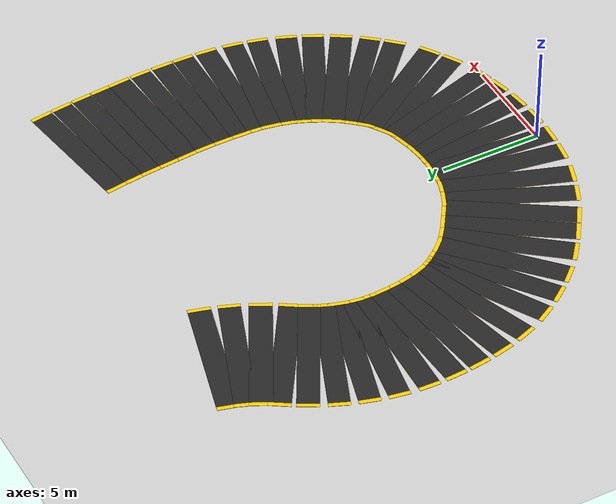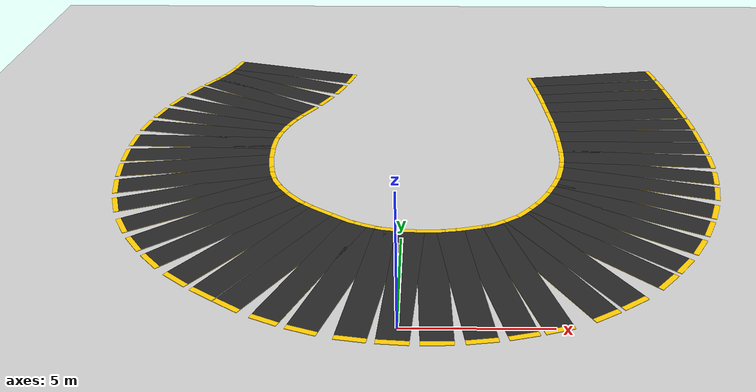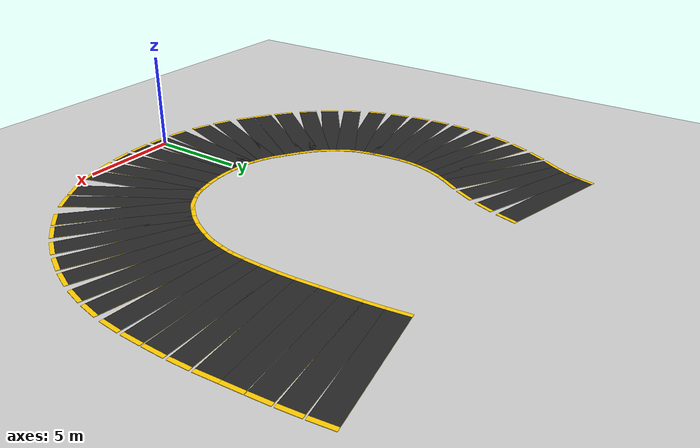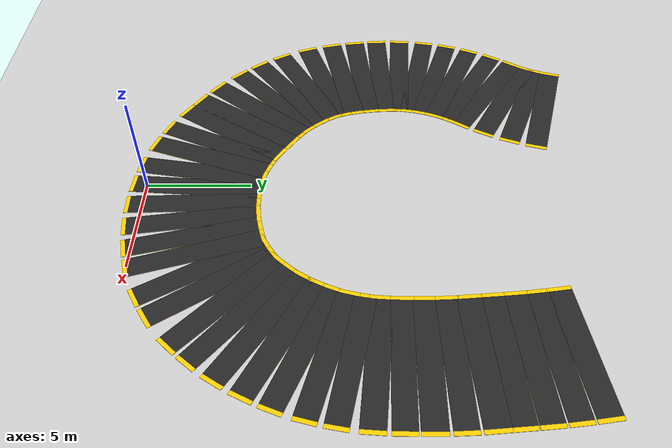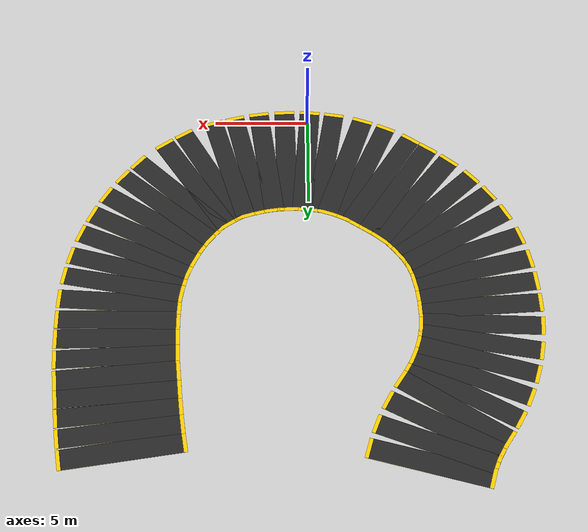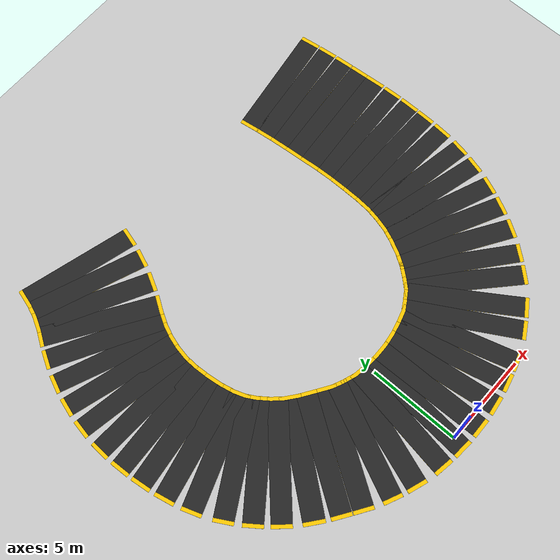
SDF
<sdf version="1.7">
 <world name="custom_road_world">
  <model name="ground_plane">
   <static>true</static>
   <link name="link">
    <collision name="collision">
     <geometry><plane><normal>0 0 1</normal><size>1000 1000</size></plane></geometry>
    </collision>
    <visual name="visual">
     <geometry><plane><normal>0 0 1</normal><size>1000 1000</size></plane></geometry>
     <material>
      <ambient>0.8 0.8 0.8 1</ambient>
      <diffuse>0.8 0.8 0.8 1</diffuse>
      <specular>0.8 0.8 0.8 1</specular>
     </material>
    </visual>
   </link>
  </model>
  <include><uri>https://fuel.ignitionrobotics.org/1.0/openrobotics/models/Sun</uri></include>
  <model name="elliptical_road">
   <static>true</static>
   <link name="seg_25">
    <pose>9.219 19.332 0.01 0 0 -1.419</pose>
    <visual name="yellow_base_25">
     <pose>0 0 0.001 0 0 0</pose>
     <geometry><box><size>1.084 6.4 0.02</size></box></geometry>
     <material>
      <ambient>1.0 0.8 0.0 1.0</ambient>
      <diffuse>1.0 0.8 0.0 1.0</diffuse>
      <specular>0.1 0.1 0.1 1.0</specular>
     </material>
    </visual>
    <visual name="asphalt_top_25">
     <pose>0 0 0.002 0 0 0</pose>
     <geometry><box><size>1.084 6.0 0.02</size></box></geometry>
     <material>
      <ambient>0.15 0.15 0.15 1.0</ambient>
      <diffuse>0.15 0.15 0.15 1.0</diffuse>
      <specular>0.05 0.05 0.05 1.0</specular>
     </material>
    </visual>
    <visual name="center_line_25">
     <pose>0 0 0.003 0 0 0</pose>
     <geometry><box><size>0.542 0.15 0.001</size></box></geometry>
     <material><ambient>0.9 0.9 0.9 1</ambient><diffuse>0.9 0.9 0.9 1</diffuse></material>
    </visual>
   </link>
   <link name="seg_26">
    <pose>9.366 18.288 0.01 0 0 -1.445</pose>
    <visual name="yellow_base_26">
     <pose>0 0 0.001 0 0 0</pose>
     <geometry><box><size>1.025 6.4 0.02</size></box></geometry>
     <material>
      <ambient>1.0 0.8 0.0 1.0</ambient>
      <diffuse>1.0 0.8 0.0 1.0</diffuse>
      <specular>0.1 0.1 0.1 1.0</specular>
     </material>
    </visual>
    <visual name="asphalt_top_26">
     <pose>0 0 0.002 0 0 0</pose>
     <geometry><box><size>1.025 6.0 0.02</size></box></geometry>
     <material>
      <ambient>0.15 0.15 0.15 1.0</ambient>
      <diffuse>0.15 0.15 0.15 1.0</diffuse>
      <specular>0.05 0.05 0.05 1.0</specular>
     </material>
    </visual>
    <visual name="center_line_26">
     <pose>0 0 0.003 0 0 0</pose>
     <geometry><box><size>0.513 0.15 0.001</size></box></geometry>
     <material><ambient>0.9 0.9 0.9 1</ambient><diffuse>0.9 0.9 0.9 1</diffuse></material>
    </visual>
   </link>
   <link name="seg_27">
    <pose>9.481 17.274 0.01 0 0 -1.472</pose>
    <visual name="yellow_base_27">
     <pose>0 0 0.001 0 0 0</pose>
     <geometry><box><size>1.015 6.4 0.02</size></box></geometry>
     <material>
      <ambient>1.0 0.8 0.0 1.0</ambient>
      <diffuse>1.0 0.8 0.0 1.0</diffuse>
      <specular>0.1 0.1 0.1 1.0</specular>
     </material>
    </visual>
    <visual name="asphalt_top_27">
     <pose>0 0 0.002 0 0 0</pose>
     <geometry><box><size>1.015 6.0 0.02</size></box></geometry>
     <material>
      <ambient>0.15 0.15 0.15 1.0</ambient>
      <diffuse>0.15 0.15 0.15 1.0</diffuse>
      <specular>0.05 0.05 0.05 1.0</specular>
     </material>
    </visual>
    <visual name="center_line_27">
     <pose>0 0 0.003 0 0 0</pose>
     <geometry><box><size>0.508 0.15 0.001</size></box></geometry>
     <material><ambient>0.9 0.9 0.9 1</ambient><diffuse>0.9 0.9 0.9 1</diffuse></material>
    </visual>
   </link>
   <link name="seg_28">
    <pose>9.575 16.270 0.01 0 0 -1.483</pose>
    <visual name="yellow_base_28">
     <pose>0 0 0.001 0 0 0</pose>
     <geometry><box><size>1.001 6.4 0.02</size></box></geometry>
     <material>
      <ambient>1.0 0.8 0.0 1.0</ambient>
      <diffuse>1.0 0.8 0.0 1.0</diffuse>
      <specular>0.1 0.1 0.1 1.0</specular>
     </material>
    </visual>
    <visual name="asphalt_top_28">
     <pose>0 0 0.002 0 0 0</pose>
     <geometry><box><size>1.001 6.0 0.02</size></box></geometry>
     <material>
      <ambient>0.15 0.15 0.15 1.0</ambient>
      <diffuse>0.15 0.15 0.15 1.0</diffuse>
      <specular>0.05 0.05 0.05 1.0</specular>
     </material>
    </visual>
    <visual name="center_line_28">
     <pose>0 0 0.003 0 0 0</pose>
     <geometry><box><size>0.501 0.15 0.001</size></box></geometry>
     <material><ambient>0.9 0.9 0.9 1</ambient><diffuse>0.9 0.9 0.9 1</diffuse></material>
    </visual>
   </link>
   <link name="seg_29">
    <pose>9.667 15.225 0.01 0 0 -1.482</pose>
    <visual name="yellow_base_29">
     <pose>0 0 0.001 0 0 0</pose>
     <geometry><box><size>1.098 6.4 0.02</size></box></geometry>
     <material>
      <ambient>1.0 0.8 0.0 1.0</ambient>
      <diffuse>1.0 0.8 0.0 1.0</diffuse>
      <specular>0.1 0.1 0.1 1.0</specular>
     </material>
    </visual>
    <visual name="asphalt_top_29">
     <pose>0 0 0.002 0 0 0</pose>
     <geometry><box><size>1.098 6.0 0.02</size></box></geometry>
     <material>
      <ambient>0.15 0.15 0.15 1.0</ambient>
      <diffuse>0.15 0.15 0.15 1.0</diffuse>
      <specular>0.05 0.05 0.05 1.0</specular>
     </material>
    </visual>
    <visual name="center_line_29">
     <pose>0 0 0.003 0 0 0</pose>
     <geometry><box><size>0.549 0.15 0.001</size></box></geometry>
     <material><ambient>0.9 0.9 0.9 1</ambient><diffuse>0.9 0.9 0.9 1</diffuse></material>
    </visual>
   </link>
   <link name="seg_30">
    <pose>9.742 14.170 0.01 0 0 -1.520</pose>
    <visual name="yellow_base_30">
     <pose>0 0 0.001 0 0 0</pose>
     <geometry><box><size>1.018 6.4 0.02</size></box></geometry>
     <material>
      <ambient>1.0 0.8 0.0 1.0</ambient>
      <diffuse>1.0 0.8 0.0 1.0</diffuse>
      <specular>0.1 0.1 0.1 1.0</specular>
     </material>
    </visual>
    <visual name="asphalt_top_30">
     <pose>0 0 0.002 0 0 0</pose>
     <geometry><box><size>1.018 6.0 0.02</size></box></geometry>
     <material>
      <ambient>0.15 0.15 0.15 1.0</ambient>
      <diffuse>0.15 0.15 0.15 1.0</diffuse>
      <specular>0.05 0.05 0.05 1.0</specular>
     </material>
    </visual>
    <visual name="center_line_30">
     <pose>0 0 0.003 0 0 0</pose>
     <geometry><box><size>0.509 0.15 0.001</size></box></geometry>
     <material><ambient>0.9 0.9 0.9 1</ambient><diffuse>0.9 0.9 0.9 1</diffuse></material>
    </visual>
   </link>
   <link name="seg_31">
    <pose>9.773 13.122 0.01 0 0 -1.562</pose>
    <visual name="yellow_base_31">
     <pose>0 0 0.001 0 0 0</pose>
     <geometry><box><size>1.078 6.4 0.02</size></box></geometry>
     <material>
      <ambient>1.0 0.8 0.0 1.0</ambient>
      <diffuse>1.0 0.8 0.0 1.0</diffuse>
      <specular>0.1 0.1 0.1 1.0</specular>
     </material>
    </visual>
    <visual name="asphalt_top_31">
     <pose>0 0 0.002 0 0 0</pose>
     <geometry><box><size>1.078 6.0 0.02</size></box></geometry>
     <material>
      <ambient>0.15 0.15 0.15 1.0</ambient>
      <diffuse>0.15 0.15 0.15 1.0</diffuse>
      <specular>0.05 0.05 0.05 1.0</specular>
     </material>
    </visual>
    <visual name="center_line_31">
     <pose>0 0 0.003 0 0 0</pose>
     <geometry><box><size>0.539 0.15 0.001</size></box></geometry>
     <material><ambient>0.9 0.9 0.9 1</ambient><diffuse>0.9 0.9 0.9 1</diffuse></material>
    </visual>
   </link>
   <link name="seg_32">
    <pose>9.770 12.073 0.01 0 0 -1.585</pose>
    <visual name="yellow_base_32">
     <pose>0 0 0.001 0 0 0</pose>
     <geometry><box><size>1.021 6.4 0.02</size></box></geometry>
     <material>
      <ambient>1.0 0.8 0.0 1.0</ambient>
      <diffuse>1.0 0.8 0.0 1.0</diffuse>
      <specular>0.1 0.1 0.1 1.0</specular>
     </material>
    </visual>
    <visual name="asphalt_top_32">
     <pose>0 0 0.002 0 0 0</pose>
     <geometry><box><size>1.021 6.0 0.02</size></box></geometry>
     <material>
      <ambient>0.15 0.15 0.15 1.0</ambient>
      <diffuse>0.15 0.15 0.15 1.0</diffuse>
      <specular>0.05 0.05 0.05 1.0</specular>
     </material>
    </visual>
    <visual name="center_line_32">
     <pose>0 0 0.003 0 0 0</pose>
     <geometry><box><size>0.510 0.15 0.001</size></box></geometry>
     <material><ambient>0.9 0.9 0.9 1</ambient><diffuse>0.9 0.9 0.9 1</diffuse></material>
    </visual>
   </link>
   <link name="seg_33">
    <pose>9.727 11.039 0.01 0 0 -1.640</pose>
    <visual name="yellow_base_33">
     <pose>0 0 0.001 0 0 0</pose>
     <geometry><box><size>1.050 6.4 0.02</size></box></geometry>
     <material>
      <ambient>1.0 0.8 0.0 1.0</ambient>
      <diffuse>1.0 0.8 0.0 1.0</diffuse>
      <specular>0.1 0.1 0.1 1.0</specular>
     </material>
    </visual>
    <visual name="asphalt_top_33">
     <pose>0 0 0.002 0 0 0</pose>
     <geometry><box><size>1.050 6.0 0.02</size></box></geometry>
     <material>
      <ambient>0.15 0.15 0.15 1.0</ambient>
      <diffuse>0.15 0.15 0.15 1.0</diffuse>
      <specular>0.05 0.05 0.05 1.0</specular>
     </material>
    </visual>
    <visual name="center_line_33">
     <pose>0 0 0.003 0 0 0</pose>
     <geometry><box><size>0.525 0.15 0.001</size></box></geometry>
     <material><ambient>0.9 0.9 0.9 1</ambient><diffuse>0.9 0.9 0.9 1</diffuse></material>
    </visual>
   </link>
   <link name="seg_34">
    <pose>9.599 10.023 0.01 0 0 -1.753</pose>
    <visual name="yellow_base_34">
     <pose>0 0 0.001 0 0 0</pose>
     <geometry><box><size>1.000 6.4 0.02</size></box></geometry>
     <material>
      <ambient>1.0 0.8 0.0 1.0</ambient>
      <diffuse>1.0 0.8 0.0 1.0</diffuse>
      <specular>0.1 0.1 0.1 1.0</specular>
     </material>
    </visual>
    <visual name="asphalt_top_34">
     <pose>0 0 0.002 0 0 0</pose>
     <geometry><box><size>1.000 6.0 0.02</size></box></geometry>
     <material>
      <ambient>0.15 0.15 0.15 1.0</ambient>
      <diffuse>0.15 0.15 0.15 1.0</diffuse>
      <specular>0.05 0.05 0.05 1.0</specular>
     </material>
    </visual>
    <visual name="center_line_34">
     <pose>0 0 0.003 0 0 0</pose>
     <geometry><box><size>0.500 0.15 0.001</size></box></geometry>
     <material><ambient>0.9 0.9 0.9 1</ambient><diffuse>0.9 0.9 0.9 1</diffuse></material>
    </visual>
   </link>
   <link name="seg_35">
    <pose>9.380 9.046 0.01 0 0 -1.829</pose>
    <visual name="yellow_base_35">
     <pose>0 0 0.001 0 0 0</pose>
     <geometry><box><size>1.003 6.4 0.02</size></box></geometry>
     <material>
      <ambient>1.0 0.8 0.0 1.0</ambient>
      <diffuse>1.0 0.8 0.0 1.0</diffuse>
      <specular>0.1 0.1 0.1 1.0</specular>
     </material>
    </visual>
    <visual name="asphalt_top_35">
     <pose>0 0 0.002 0 0 0</pose>
     <geometry><box><size>1.003 6.0 0.02</size></box></geometry>
     <material>
      <ambient>0.15 0.15 0.15 1.0</ambient>
      <diffuse>0.15 0.15 0.15 1.0</diffuse>
      <specular>0.05 0.05 0.05 1.0</specular>
     </material>
    </visual>
    <visual name="center_line_35">
     <pose>0 0 0.003 0 0 0</pose>
     <geometry><box><size>0.502 0.15 0.001</size></box></geometry>
     <material><ambient>0.9 0.9 0.9 1</ambient><diffuse>0.9 0.9 0.9 1</diffuse></material>
    </visual>
   </link>
   <link name="seg_36">
    <pose>9.058 8.078 0.01 0 0 -1.954</pose>
    <visual name="yellow_base_36">
     <pose>0 0 0.001 0 0 0</pose>
     <geometry><box><size>1.041 6.4 0.02</size></box></geometry>
     <material>
      <ambient>1.0 0.8 0.0 1.0</ambient>
      <diffuse>1.0 0.8 0.0 1.0</diffuse>
      <specular>0.1 0.1 0.1 1.0</specular>
     </material>
    </visual>
    <visual name="asphalt_top_36">
     <pose>0 0 0.002 0 0 0</pose>
     <geometry><box><size>1.041 6.0 0.02</size></box></geometry>
     <material>
      <ambient>0.15 0.15 0.15 1.0</ambient>
      <diffuse>0.15 0.15 0.15 1.0</diffuse>
      <specular>0.05 0.05 0.05 1.0</specular>
     </material>
    </visual>
    <visual name="center_line_36">
     <pose>0 0 0.003 0 0 0</pose>
     <geometry><box><size>0.521 0.15 0.001</size></box></geometry>
     <material><ambient>0.9 0.9 0.9 1</ambient><diffuse>0.9 0.9 0.9 1</diffuse></material>
    </visual>
   </link>
   <link name="seg_37">
    <pose>8.627 7.124 0.01 0 0 -2.034</pose>
    <visual name="yellow_base_37">
     <pose>0 0 0.001 0 0 0</pose>
     <geometry><box><size>1.054 6.4 0.02</size></box></geometry>
     <material>
      <ambient>1.0 0.8 0.0 1.0</ambient>
      <diffuse>1.0 0.8 0.0 1.0</diffuse>
      <specular>0.1 0.1 0.1 1.0</specular>
     </material>
    </visual>
    <visual name="asphalt_top_37">
     <pose>0 0 0.002 0 0 0</pose>
     <geometry><box><size>1.054 6.0 0.02</size></box></geometry>
     <material>
      <ambient>0.15 0.15 0.15 1.0</ambient>
      <diffuse>0.15 0.15 0.15 1.0</diffuse>
      <specular>0.05 0.05 0.05 1.0</specular>
     </material>
    </visual>
    <visual name="center_line_37">
     <pose>0 0 0.003 0 0 0</pose>
     <geometry><box><size>0.527 0.15 0.001</size></box></geometry>
     <material><ambient>0.9 0.9 0.9 1</ambient><diffuse>0.9 0.9 0.9 1</diffuse></material>
    </visual>
   </link>
   <link name="seg_38">
    <pose>8.107 6.202 0.01 0 0 -2.135</pose>
    <visual name="yellow_base_38">
     <pose>0 0 0.001 0 0 0</pose>
     <geometry><box><size>1.066 6.4 0.02</size></box></geometry>
     <material>
      <ambient>1.0 0.8 0.0 1.0</ambient>
      <diffuse>1.0 0.8 0.0 1.0</diffuse>
      <specular>0.1 0.1 0.1 1.0</specular>
     </material>
    </visual>
    <visual name="asphalt_top_38">
     <pose>0 0 0.002 0 0 0</pose>
     <geometry><box><size>1.066 6.0 0.02</size></box></geometry>
     <material>
      <ambient>0.15 0.15 0.15 1.0</ambient>
      <diffuse>0.15 0.15 0.15 1.0</diffuse>
      <specular>0.05 0.05 0.05 1.0</specular>
     </material>
    </visual>
    <visual name="center_line_38">
     <pose>0 0 0.003 0 0 0</pose>
     <geometry><box><size>0.533 0.15 0.001</size></box></geometry>
     <material><ambient>0.9 0.9 0.9 1</ambient><diffuse>0.9 0.9 0.9 1</diffuse></material>
    </visual>
   </link>
   <link name="seg_39">
    <pose>7.504 5.363 0.01 0 0 -2.257</pose>
    <visual name="yellow_base_39">
     <pose>0 0 0.001 0 0 0</pose>
     <geometry><box><size>1.004 6.4 0.02</size></box></geometry>
     <material>
      <ambient>1.0 0.8 0.0 1.0</ambient>
      <diffuse>1.0 0.8 0.0 1.0</diffuse>
      <specular>0.1 0.1 0.1 1.0</specular>
     </material>
    </visual>
    <visual name="asphalt_top_39">
     <pose>0 0 0.002 0 0 0</pose>
     <geometry><box><size>1.004 6.0 0.02</size></box></geometry>
     <material>
      <ambient>0.15 0.15 0.15 1.0</ambient>
      <diffuse>0.15 0.15 0.15 1.0</diffuse>
      <specular>0.05 0.05 0.05 1.0</specular>
     </material>
    </visual>
    <visual name="center_line_39">
     <pose>0 0 0.003 0 0 0</pose>
     <geometry><box><size>0.502 0.15 0.001</size></box></geometry>
     <material><ambient>0.9 0.9 0.9 1</ambient><diffuse>0.9 0.9 0.9 1</diffuse></material>
    </visual>
   </link>
   <link name="seg_40">
    <pose>6.827 4.587 0.01 0 0 -2.317</pose>
    <visual name="yellow_base_40">
     <pose>0 0 0.001 0 0 0</pose>
     <geometry><box><size>1.056 6.4 0.02</size></box></geometry>
     <material>
      <ambient>1.0 0.8 0.0 1.0</ambient>
      <diffuse>1.0 0.8 0.0 1.0</diffuse>
      <specular>0.1 0.1 0.1 1.0</specular>
     </material>
    </visual>
    <visual name="asphalt_top_40">
     <pose>0 0 0.002 0 0 0</pose>
     <geometry><box><size>1.056 6.0 0.02</size></box></geometry>
     <material>
      <ambient>0.15 0.15 0.15 1.0</ambient>
      <diffuse>0.15 0.15 0.15 1.0</diffuse>
      <specular>0.05 0.05 0.05 1.0</specular>
     </material>
    </visual>
    <visual name="center_line_40">
     <pose>0 0 0.003 0 0 0</pose>
     <geometry><box><size>0.528 0.15 0.001</size></box></geometry>
     <material><ambient>0.9 0.9 0.9 1</ambient><diffuse>0.9 0.9 0.9 1</diffuse></material>
    </visual>
   </link>
   <link name="seg_41">
    <pose>6.022 3.901 0.01 0 0 -2.552</pose>
    <visual name="yellow_base_41">
     <pose>0 0 0.001 0 0 0</pose>
     <geometry><box><size>1.074 6.4 0.02</size></box></geometry>
     <material>
      <ambient>1.0 0.8 0.0 1.0</ambient>
      <diffuse>1.0 0.8 0.0 1.0</diffuse>
      <specular>0.1 0.1 0.1 1.0</specular>
     </material>
    </visual>
    <visual name="asphalt_top_41">
     <pose>0 0 0.002 0 0 0</pose>
     <geometry><box><size>1.074 6.0 0.02</size></box></geometry>
     <material>
      <ambient>0.15 0.15 0.15 1.0</ambient>
      <diffuse>0.15 0.15 0.15 1.0</diffuse>
      <specular>0.05 0.05 0.05 1.0</specular>
     </material>
    </visual>
    <visual name="center_line_41">
     <pose>0 0 0.003 0 0 0</pose>
     <geometry><box><size>0.537 0.15 0.001</size></box></geometry>
     <material><ambient>0.9 0.9 0.9 1</ambient><diffuse>0.9 0.9 0.9 1</diffuse></material>
    </visual>
   </link>
   <link name="seg_42">
    <pose>5.135 3.342 0.01 0 0 -2.609</pose>
    <visual name="yellow_base_42">
     <pose>0 0 0.001 0 0 0</pose>
     <geometry><box><size>1.024 6.4 0.02</size></box></geometry>
     <material>
      <ambient>1.0 0.8 0.0 1.0</ambient>
      <diffuse>1.0 0.8 0.0 1.0</diffuse>
      <specular>0.1 0.1 0.1 1.0</specular>
     </material>
    </visual>
    <visual name="asphalt_top_42">
     <pose>0 0 0.002 0 0 0</pose>
     <geometry><box><size>1.024 6.0 0.02</size></box></geometry>
     <material>
      <ambient>0.15 0.15 0.15 1.0</ambient>
      <diffuse>0.15 0.15 0.15 1.0</diffuse>
      <specular>0.05 0.05 0.05 1.0</specular>
     </material>
    </visual>
    <visual name="center_line_42">
     <pose>0 0 0.003 0 0 0</pose>
     <geometry><box><size>0.512 0.15 0.001</size></box></geometry>
     <material><ambient>0.9 0.9 0.9 1</ambient><diffuse>0.9 0.9 0.9 1</diffuse></material>
    </visual>
   </link>
   <link name="seg_43">
    <pose>4.209 2.936 0.01 0 0 -2.847</pose>
    <visual name="yellow_base_43">
     <pose>0 0 0.001 0 0 0</pose>
     <geometry><box><size>1.013 6.4 0.02</size></box></geometry>
     <material>
      <ambient>1.0 0.8 0.0 1.0</ambient>
      <diffuse>1.0 0.8 0.0 1.0</diffuse>
      <specular>0.1 0.1 0.1 1.0</specular>
     </material>
    </visual>
    <visual name="asphalt_top_43">
     <pose>0 0 0.002 0 0 0</pose>
     <geometry><box><size>1.013 6.0 0.02</size></box></geometry>
     <material>
      <ambient>0.15 0.15 0.15 1.0</ambient>
      <diffuse>0.15 0.15 0.15 1.0</diffuse>
      <specular>0.05 0.05 0.05 1.0</specular>
     </material>
    </visual>
    <visual name="center_line_43">
     <pose>0 0 0.003 0 0 0</pose>
     <geometry><box><size>0.506 0.15 0.001</size></box></geometry>
     <material><ambient>0.9 0.9 0.9 1</ambient><diffuse>0.9 0.9 0.9 1</diffuse></material>
    </visual>
   </link>
   <link name="seg_44">
    <pose>3.234 2.669 0.01 0 0 -2.903</pose>
    <visual name="yellow_base_44">
     <pose>0 0 0.001 0 0 0</pose>
     <geometry><box><size>1.011 6.4 0.02</size></box></geometry>
     <material>
      <ambient>1.0 0.8 0.0 1.0</ambient>
      <diffuse>1.0 0.8 0.0 1.0</diffuse>
      <specular>0.1 0.1 0.1 1.0</specular>
     </material>
    </visual>
    <visual name="asphalt_top_44">
     <pose>0 0 0.002 0 0 0</pose>
     <geometry><box><size>1.011 6.0 0.02</size></box></geometry>
     <material>
      <ambient>0.15 0.15 0.15 1.0</ambient>
      <diffuse>0.15 0.15 0.15 1.0</diffuse>
      <specular>0.05 0.05 0.05 1.0</specular>
     </material>
    </visual>
    <visual name="center_line_44">
     <pose>0 0 0.003 0 0 0</pose>
     <geometry><box><size>0.506 0.15 0.001</size></box></geometry>
     <material><ambient>0.9 0.9 0.9 1</ambient><diffuse>0.9 0.9 0.9 1</diffuse></material>
    </visual>
   </link>
   <link name="seg_45">
    <pose>2.222 2.477 0.01 0 0 -3.004</pose>
    <visual name="yellow_base_45">
     <pose>0 0 0.001 0 0 0</pose>
     <geometry><box><size>1.051 6.4 0.02</size></box></geometry>
     <material>
      <ambient>1.0 0.8 0.0 1.0</ambient>
      <diffuse>1.0 0.8 0.0 1.0</diffuse>
      <specular>0.1 0.1 0.1 1.0</specular>
     </material>
    </visual>
    <visual name="asphalt_top_45">
     <pose>0 0 0.002 0 0 0</pose>
     <geometry><box><size>1.051 6.0 0.02</size></box></geometry>
     <material>
      <ambient>0.15 0.15 0.15 1.0</ambient>
      <diffuse>0.15 0.15 0.15 1.0</diffuse>
      <specular>0.05 0.05 0.05 1.0</specular>
     </material>
    </visual>
    <visual name="center_line_45">
     <pose>0 0 0.003 0 0 0</pose>
     <geometry><box><size>0.526 0.15 0.001</size></box></geometry>
     <material><ambient>0.9 0.9 0.9 1</ambient><diffuse>0.9 0.9 0.9 1</diffuse></material>
    </visual>
   </link>
   <link name="seg_46">
    <pose>1.164 2.390 0.01 0 0 -3.113</pose>
    <visual name="yellow_base_46">
     <pose>0 0 0.001 0 0 0</pose>
     <geometry><box><size>1.075 6.4 0.02</size></box></geometry>
     <material>
      <ambient>1.0 0.8 0.0 1.0</ambient>
      <diffuse>1.0 0.8 0.0 1.0</diffuse>
      <specular>0.1 0.1 0.1 1.0</specular>
     </material>
    </visual>
    <visual name="asphalt_top_46">
     <pose>0 0 0.002 0 0 0</pose>
     <geometry><box><size>1.075 6.0 0.02</size></box></geometry>
     <material>
      <ambient>0.15 0.15 0.15 1.0</ambient>
      <diffuse>0.15 0.15 0.15 1.0</diffuse>
      <specular>0.05 0.05 0.05 1.0</specular>
     </material>
    </visual>
    <visual name="center_line_46">
     <pose>0 0 0.003 0 0 0</pose>
     <geometry><box><size>0.537 0.15 0.001</size></box></geometry>
     <material><ambient>0.9 0.9 0.9 1</ambient><diffuse>0.9 0.9 0.9 1</diffuse></material>
    </visual>
   </link>
   <link name="seg_47">
    <pose>0.092 2.413 0.01 0 0 3.069</pose>
    <visual name="yellow_base_47">
     <pose>0 0 0.001 0 0 0</pose>
     <geometry><box><size>1.072 6.4 0.02</size></box></geometry>
     <material>
      <ambient>1.0 0.8 0.0 1.0</ambient>
      <diffuse>1.0 0.8 0.0 1.0</diffuse>
      <specular>0.1 0.1 0.1 1.0</specular>
     </material>
    </visual>
    <visual name="asphalt_top_47">
     <pose>0 0 0.002 0 0 0</pose>
     <geometry><box><size>1.072 6.0 0.02</size></box></geometry>
     <material>
      <ambient>0.15 0.15 0.15 1.0</ambient>
      <diffuse>0.15 0.15 0.15 1.0</diffuse>
      <specular>0.05 0.05 0.05 1.0</specular>
     </material>
    </visual>
    <visual name="center_line_47">
     <pose>0 0 0.003 0 0 0</pose>
     <geometry><box><size>0.536 0.15 0.001</size></box></geometry>
     <material><ambient>0.9 0.9 0.9 1</ambient><diffuse>0.9 0.9 0.9 1</diffuse></material>
    </visual>
   </link>
   <link name="seg_48">
    <pose>-0.965 2.534 0.01 0 0 2.985</pose>
    <visual name="yellow_base_48">
     <pose>0 0 0.001 0 0 0</pose>
     <geometry><box><size>1.058 6.4 0.02</size></box></geometry>
     <material>
      <ambient>1.0 0.8 0.0 1.0</ambient>
      <diffuse>1.0 0.8 0.0 1.0</diffuse>
      <specular>0.1 0.1 0.1 1.0</specular>
     </material>
    </visual>
    <visual name="asphalt_top_48">
     <pose>0 0 0.002 0 0 0</pose>
     <geometry><box><size>1.058 6.0 0.02</size></box></geometry>
     <material>
      <ambient>0.15 0.15 0.15 1.0</ambient>
      <diffuse>0.15 0.15 0.15 1.0</diffuse>
      <specular>0.05 0.05 0.05 1.0</specular>
     </material>
    </visual>
    <visual name="center_line_48">
     <pose>0 0 0.003 0 0 0</pose>
     <geometry><box><size>0.529 0.15 0.001</size></box></geometry>
     <material><ambient>0.9 0.9 0.9 1</ambient><diffuse>0.9 0.9 0.9 1</diffuse></material>
    </visual>
   </link>
   <link name="seg_49">
    <pose>-2.002 2.794 0.01 0 0 2.811</pose>
    <visual name="yellow_base_49">
     <pose>0 0 0.001 0 0 0</pose>
     <geometry><box><size>1.088 6.4 0.02</size></box></geometry>
     <material>
      <ambient>1.0 0.8 0.0 1.0</ambient>
      <diffuse>1.0 0.8 0.0 1.0</diffuse>
      <specular>0.1 0.1 0.1 1.0</specular>
     </material>
    </visual>
    <visual name="asphalt_top_49">
     <pose>0 0 0.002 0 0 0</pose>
     <geometry><box><size>1.088 6.0 0.02</size></box></geometry>
     <material>
      <ambient>0.15 0.15 0.15 1.0</ambient>
      <diffuse>0.15 0.15 0.15 1.0</diffuse>
      <specular>0.05 0.05 0.05 1.0</specular>
     </material>
    </visual>
    <visual name="center_line_49">
     <pose>0 0 0.003 0 0 0</pose>
     <geometry><box><size>0.544 0.15 0.001</size></box></geometry>
     <material><ambient>0.9 0.9 0.9 1</ambient><diffuse>0.9 0.9 0.9 1</diffuse></material>
    </visual>
   </link>
   <link name="seg_50">
    <pose>-2.986 3.181 0.01 0 0 2.720</pose>
    <visual name="yellow_base_50">
     <pose>0 0 0.001 0 0 0</pose>
     <geometry><box><size>1.028 6.4 0.02</size></box></geometry>
     <material>
      <ambient>1.0 0.8 0.0 1.0</ambient>
      <diffuse>1.0 0.8 0.0 1.0</diffuse>
      <specular>0.1 0.1 0.1 1.0</specular>
     </material>
    </visual>
    <visual name="asphalt_top_50">
     <pose>0 0 0.002 0 0 0</pose>
     <geometry><box><size>1.028 6.0 0.02</size></box></geometry>
     <material>
      <ambient>0.15 0.15 0.15 1.0</ambient>
      <diffuse>0.15 0.15 0.15 1.0</diffuse>
      <specular>0.05 0.05 0.05 1.0</specular>
     </material>
    </visual>
    <visual name="center_line_50">
     <pose>0 0 0.003 0 0 0</pose>
     <geometry><box><size>0.514 0.15 0.001</size></box></geometry>
     <material><ambient>0.9 0.9 0.9 1</ambient><diffuse>0.9 0.9 0.9 1</diffuse></material>
    </visual>
   </link>
   <link name="seg_51">
    <pose>-3.901 3.678 0.01 0 0 2.569</pose>
    <visual name="yellow_base_51">
     <pose>0 0 0.001 0 0 0</pose>
     <geometry><box><size>1.061 6.4 0.02</size></box></geometry>
     <material>
      <ambient>1.0 0.8 0.0 1.0</ambient>
      <diffuse>1.0 0.8 0.0 1.0</diffuse>
      <specular>0.1 0.1 0.1 1.0</specular>
     </material>
    </visual>
    <visual name="asphalt_top_51">
     <pose>0 0 0.002 0 0 0</pose>
     <geometry><box><size>1.061 6.0 0.02</size></box></geometry>
     <material>
      <ambient>0.15 0.15 0.15 1.0</ambient>
      <diffuse>0.15 0.15 0.15 1.0</diffuse>
      <specular>0.05 0.05 0.05 1.0</specular>
     </material>
    </visual>
    <visual name="center_line_51">
     <pose>0 0 0.003 0 0 0</pose>
     <geometry><box><size>0.531 0.15 0.001</size></box></geometry>
     <material><ambient>0.9 0.9 0.9 1</ambient><diffuse>0.9 0.9 0.9 1</diffuse></material>
    </visual>
   </link>
   <link name="seg_52">
    <pose>-4.791 4.260 0.01 0 0 2.557</pose>
    <visual name="yellow_base_52">
     <pose>0 0 0.001 0 0 0</pose>
     <geometry><box><size>1.064 6.4 0.02</size></box></geometry>
     <material>
      <ambient>1.0 0.8 0.0 1.0</ambient>
      <diffuse>1.0 0.8 0.0 1.0</diffuse>
      <specular>0.1 0.1 0.1 1.0</specular>
     </material>
    </visual>
    <visual name="asphalt_top_52">
     <pose>0 0 0.002 0 0 0</pose>
     <geometry><box><size>1.064 6.0 0.02</size></box></geometry>
     <material>
      <ambient>0.15 0.15 0.15 1.0</ambient>
      <diffuse>0.15 0.15 0.15 1.0</diffuse>
      <specular>0.05 0.05 0.05 1.0</specular>
     </material>
    </visual>
    <visual name="center_line_52">
     <pose>0 0 0.003 0 0 0</pose>
     <geometry><box><size>0.532 0.15 0.001</size></box></geometry>
     <material><ambient>0.9 0.9 0.9 1</ambient><diffuse>0.9 0.9 0.9 1</diffuse></material>
    </visual>
   </link>
   <link name="seg_53">
    <pose>-5.674 4.899 0.01 0 0 2.475</pose>
    <visual name="yellow_base_53">
     <pose>0 0 0.001 0 0 0</pose>
     <geometry><box><size>1.118 6.4 0.02</size></box></geometry>
     <material>
      <ambient>1.0 0.8 0.0 1.0</ambient>
      <diffuse>1.0 0.8 0.0 1.0</diffuse>
      <specular>0.1 0.1 0.1 1.0</specular>
     </material>
    </visual>
    <visual name="asphalt_top_53">
     <pose>0 0 0.002 0 0 0</pose>
     <geometry><box><size>1.118 6.0 0.02</size></box></geometry>
     <material>
      <ambient>0.15 0.15 0.15 1.0</ambient>
      <diffuse>0.15 0.15 0.15 1.0</diffuse>
      <specular>0.05 0.05 0.05 1.0</specular>
     </material>
    </visual>
    <visual name="center_line_53">
     <pose>0 0 0.003 0 0 0</pose>
     <geometry><box><size>0.559 0.15 0.001</size></box></geometry>
     <material><ambient>0.9 0.9 0.9 1</ambient><diffuse>0.9 0.9 0.9 1</diffuse></material>
    </visual>
   </link>
   <link name="seg_54">
    <pose>-6.473 5.630 0.01 0 0 2.322</pose>
    <visual name="yellow_base_54">
     <pose>0 0 0.001 0 0 0</pose>
     <geometry><box><size>1.055 6.4 0.02</size></box></geometry>
     <material>
      <ambient>1.0 0.8 0.0 1.0</ambient>
      <diffuse>1.0 0.8 0.0 1.0</diffuse>
      <specular>0.1 0.1 0.1 1.0</specular>
     </material>
    </visual>
    <visual name="asphalt_top_54">
     <pose>0 0 0.002 0 0 0</pose>
     <geometry><box><size>1.055 6.0 0.02</size></box></geometry>
     <material>
      <ambient>0.15 0.15 0.15 1.0</ambient>
      <diffuse>0.15 0.15 0.15 1.0</diffuse>
      <specular>0.05 0.05 0.05 1.0</specular>
     </material>
    </visual>
    <visual name="center_line_54">
     <pose>0 0 0.003 0 0 0</pose>
     <geometry><box><size>0.527 0.15 0.001</size></box></geometry>
     <material><ambient>0.9 0.9 0.9 1</ambient><diffuse>0.9 0.9 0.9 1</diffuse></material>
    </visual>
   </link>
   <link name="seg_55">
    <pose>-7.148 6.432 0.01 0 0 2.219</pose>
    <visual name="yellow_base_55">
     <pose>0 0 0.001 0 0 0</pose>
     <geometry><box><size>1.046 6.4 0.02</size></box></geometry>
     <material>
      <ambient>1.0 0.8 0.0 1.0</ambient>
      <diffuse>1.0 0.8 0.0 1.0</diffuse>
      <specular>0.1 0.1 0.1 1.0</specular>
     </material>
    </visual>
    <visual name="asphalt_top_55">
     <pose>0 0 0.002 0 0 0</pose>
     <geometry><box><size>1.046 6.0 0.02</size></box></geometry>
     <material>
      <ambient>0.15 0.15 0.15 1.0</ambient>
      <diffuse>0.15 0.15 0.15 1.0</diffuse>
      <specular>0.05 0.05 0.05 1.0</specular>
     </material>
    </visual>
    <visual name="center_line_55">
     <pose>0 0 0.003 0 0 0</pose>
     <geometry><box><size>0.523 0.15 0.001</size></box></geometry>
     <material><ambient>0.9 0.9 0.9 1</ambient><diffuse>0.9 0.9 0.9 1</diffuse></material>
    </visual>
   </link>
   <link name="seg_56">
    <pose>-7.726 7.302 0.01 0 0 2.095</pose>
    <visual name="yellow_base_56">
     <pose>0 0 0.001 0 0 0</pose>
     <geometry><box><size>1.047 6.4 0.02</size></box></geometry>
     <material>
      <ambient>1.0 0.8 0.0 1.0</ambient>
      <diffuse>1.0 0.8 0.0 1.0</diffuse>
      <specular>0.1 0.1 0.1 1.0</specular>
     </material>
    </visual>
    <visual name="asphalt_top_56">
     <pose>0 0 0.002 0 0 0</pose>
     <geometry><box><size>1.047 6.0 0.02</size></box></geometry>
     <material>
      <ambient>0.15 0.15 0.15 1.0</ambient>
      <diffuse>0.15 0.15 0.15 1.0</diffuse>
      <specular>0.05 0.05 0.05 1.0</specular>
     </material>
    </visual>
    <visual name="center_line_56">
     <pose>0 0 0.003 0 0 0</pose>
     <geometry><box><size>0.524 0.15 0.001</size></box></geometry>
     <material><ambient>0.9 0.9 0.9 1</ambient><diffuse>0.9 0.9 0.9 1</diffuse></material>
    </visual>
   </link>
   <link name="seg_57">
    <pose>-8.169 8.254 0.01 0 0 1.918</pose>
    <visual name="yellow_base_57">
     <pose>0 0 0.001 0 0 0</pose>
     <geometry><box><size>1.061 6.4 0.02</size></box></geometry>
     <material>
      <ambient>1.0 0.8 0.0 1.0</ambient>
      <diffuse>1.0 0.8 0.0 1.0</diffuse>
      <specular>0.1 0.1 0.1 1.0</specular>
     </material>
    </visual>
    <visual name="asphalt_top_57">
     <pose>0 0 0.002 0 0 0</pose>
     <geometry><box><size>1.061 6.0 0.02</size></box></geometry>
     <material>
      <ambient>0.15 0.15 0.15 1.0</ambient>
      <diffuse>0.15 0.15 0.15 1.0</diffuse>
      <specular>0.05 0.05 0.05 1.0</specular>
     </material>
    </visual>
    <visual name="center_line_57">
     <pose>0 0 0.003 0 0 0</pose>
     <geometry><box><size>0.530 0.15 0.001</size></box></geometry>
     <material><ambient>0.9 0.9 0.9 1</ambient><diffuse>0.9 0.9 0.9 1</diffuse></material>
    </visual>
   </link>
   <link name="seg_58">
    <pose>-8.468 9.277 0.01 0 0 1.793</pose>
    <visual name="yellow_base_58">
     <pose>0 0 0.001 0 0 0</pose>
     <geometry><box><size>1.074 6.4 0.02</size></box></geometry>
     <material>
      <ambient>1.0 0.8 0.0 1.0</ambient>
      <diffuse>1.0 0.8 0.0 1.0</diffuse>
      <specular>0.1 0.1 0.1 1.0</specular>
     </material>
    </visual>
    <visual name="asphalt_top_58">
     <pose>0 0 0.002 0 0 0</pose>
     <geometry><box><size>1.074 6.0 0.02</size></box></geometry>
     <material>
      <ambient>0.15 0.15 0.15 1.0</ambient>
      <diffuse>0.15 0.15 0.15 1.0</diffuse>
      <specular>0.05 0.05 0.05 1.0</specular>
     </material>
    </visual>
    <visual name="center_line_58">
     <pose>0 0 0.003 0 0 0</pose>
     <geometry><box><size>0.537 0.15 0.001</size></box></geometry>
     <material><ambient>0.9 0.9 0.9 1</ambient><diffuse>0.9 0.9 0.9 1</diffuse></material>
    </visual>
   </link>
   <link name="seg_59">
    <pose>-8.657 10.330 0.01 0 0 1.703</pose>
    <visual name="yellow_base_59">
     <pose>0 0 0.001 0 0 0</pose>
     <geometry><box><size>1.067 6.4 0.02</size></box></geometry>
     <material>
      <ambient>1.0 0.8 0.0 1.0</ambient>
      <diffuse>1.0 0.8 0.0 1.0</diffuse>
      <specular>0.1 0.1 0.1 1.0</specular>
     </material>
    </visual>
    <visual name="asphalt_top_59">
     <pose>0 0 0.002 0 0 0</pose>
     <geometry><box><size>1.067 6.0 0.02</size></box></geometry>
     <material>
      <ambient>0.15 0.15 0.15 1.0</ambient>
      <diffuse>0.15 0.15 0.15 1.0</diffuse>
      <specular>0.05 0.05 0.05 1.0</specular>
     </material>
    </visual>
    <visual name="center_line_59">
     <pose>0 0 0.003 0 0 0</pose>
     <geometry><box><size>0.534 0.15 0.001</size></box></geometry>
     <material><ambient>0.9 0.9 0.9 1</ambient><diffuse>0.9 0.9 0.9 1</diffuse></material>
    </visual>
   </link>
   <link name="seg_60">
    <pose>-8.759 11.384 0.01 0 0 1.632</pose>
    <visual name="yellow_base_60">
     <pose>0 0 0.001 0 0 0</pose>
     <geometry><box><size>1.052 6.4 0.02</size></box></geometry>
     <material>
      <ambient>1.0 0.8 0.0 1.0</ambient>
      <diffuse>1.0 0.8 0.0 1.0</diffuse>
      <specular>0.1 0.1 0.1 1.0</specular>
     </material>
    </visual>
    <visual name="asphalt_top_60">
     <pose>0 0 0.002 0 0 0</pose>
     <geometry><box><size>1.052 6.0 0.02</size></box></geometry>
     <material>
      <ambient>0.15 0.15 0.15 1.0</ambient>
      <diffuse>0.15 0.15 0.15 1.0</diffuse>
      <specular>0.05 0.05 0.05 1.0</specular>
     </material>
    </visual>
    <visual name="center_line_60">
     <pose>0 0 0.003 0 0 0</pose>
     <geometry><box><size>0.526 0.15 0.001</size></box></geometry>
     <material><ambient>0.9 0.9 0.9 1</ambient><diffuse>0.9 0.9 0.9 1</diffuse></material>
    </visual>
   </link>
   <link name="seg_61">
    <pose>-8.771 12.426 0.01 0 0 1.532</pose>
    <visual name="yellow_base_61">
     <pose>0 0 0.001 0 0 0</pose>
     <geometry><box><size>1.035 6.4 0.02</size></box></geometry>
     <material>
      <ambient>1.0 0.8 0.0 1.0</ambient>
      <diffuse>1.0 0.8 0.0 1.0</diffuse>
      <specular>0.1 0.1 0.1 1.0</specular>
     </material>
    </visual>
    <visual name="asphalt_top_61">
     <pose>0 0 0.002 0 0 0</pose>
     <geometry><box><size>1.035 6.0 0.02</size></box></geometry>
     <material>
      <ambient>0.15 0.15 0.15 1.0</ambient>
      <diffuse>0.15 0.15 0.15 1.0</diffuse>
      <specular>0.05 0.05 0.05 1.0</specular>
     </material>
    </visual>
    <visual name="center_line_61">
     <pose>0 0 0.003 0 0 0</pose>
     <geometry><box><size>0.518 0.15 0.001</size></box></geometry>
     <material><ambient>0.9 0.9 0.9 1</ambient><diffuse>0.9 0.9 0.9 1</diffuse></material>
    </visual>
   </link>
   <link name="seg_62">
    <pose>-8.664 13.442 0.01 0 0 1.399</pose>
    <visual name="yellow_base_62">
     <pose>0 0 0.001 0 0 0</pose>
     <geometry><box><size>1.011 6.4 0.02</size></box></geometry>
     <material>
      <ambient>1.0 0.8 0.0 1.0</ambient>
      <diffuse>1.0 0.8 0.0 1.0</diffuse>
      <specular>0.1 0.1 0.1 1.0</specular>
     </material>
    </visual>
    <visual name="asphalt_top_62">
     <pose>0 0 0.002 0 0 0</pose>
     <geometry><box><size>1.011 6.0 0.02</size></box></geometry>
     <material>
      <ambient>0.15 0.15 0.15 1.0</ambient>
      <diffuse>0.15 0.15 0.15 1.0</diffuse>
      <specular>0.05 0.05 0.05 1.0</specular>
     </material>
    </visual>
    <visual name="center_line_62">
     <pose>0 0 0.003 0 0 0</pose>
     <geometry><box><size>0.506 0.15 0.001</size></box></geometry>
     <material><ambient>0.9 0.9 0.9 1</ambient><diffuse>0.9 0.9 0.9 1</diffuse></material>
    </visual>
   </link>
   <link name="seg_63">
    <pose>-8.437 14.425 0.01 0 0 1.289</pose>
    <visual name="yellow_base_63">
     <pose>0 0 0.001 0 0 0</pose>
     <geometry><box><size>1.010 6.4 0.02</size></box></geometry>
     <material>
      <ambient>1.0 0.8 0.0 1.0</ambient>
      <diffuse>1.0 0.8 0.0 1.0</diffuse>
      <specular>0.1 0.1 0.1 1.0</specular>
     </material>
    </visual>
    <visual name="asphalt_top_63">
     <pose>0 0 0.002 0 0 0</pose>
     <geometry><box><size>1.010 6.0 0.02</size></box></geometry>
     <material>
      <ambient>0.15 0.15 0.15 1.0</ambient>
      <diffuse>0.15 0.15 0.15 1.0</diffuse>
      <specular>0.05 0.05 0.05 1.0</specular>
     </material>
    </visual>
    <visual name="center_line_63">
     <pose>0 0 0.003 0 0 0</pose>
     <geometry><box><size>0.505 0.15 0.001</size></box></geometry>
     <material><ambient>0.9 0.9 0.9 1</ambient><diffuse>0.9 0.9 0.9 1</diffuse></material>
    </visual>
   </link>
   <link name="seg_64">
    <pose>-8.106 15.373 0.01 0 0 1.180</pose>
    <visual name="yellow_base_64">
     <pose>0 0 0.001 0 0 0</pose>
     <geometry><box><size>1.001 6.4 0.02</size></box></geometry>
     <material>
      <ambient>1.0 0.8 0.0 1.0</ambient>
      <diffuse>1.0 0.8 0.0 1.0</diffuse>
      <specular>0.1 0.1 0.1 1.0</specular>
     </material>
    </visual>
    <visual name="asphalt_top_64">
     <pose>0 0 0.002 0 0 0</pose>
     <geometry><box><size>1.001 6.0 0.02</size></box></geometry>
     <material>
      <ambient>0.15 0.15 0.15 1.0</ambient>
      <diffuse>0.15 0.15 0.15 1.0</diffuse>
      <specular>0.05 0.05 0.05 1.0</specular>
     </material>
    </visual>
    <visual name="center_line_64">
     <pose>0 0 0.003 0 0 0</pose>
     <geometry><box><size>0.501 0.15 0.001</size></box></geometry>
     <material><ambient>0.9 0.9 0.9 1</ambient><diffuse>0.9 0.9 0.9 1</diffuse></material>
    </visual>
   </link>
   <link name="seg_65">
    <pose>-7.667 16.285 0.01 0 0 1.066</pose>
    <visual name="yellow_base_65">
     <pose>0 0 0.001 0 0 0</pose>
     <geometry><box><size>1.027 6.4 0.02</size></box></geometry>
     <material>
      <ambient>1.0 0.8 0.0 1.0</ambient>
      <diffuse>1.0 0.8 0.0 1.0</diffuse>
      <specular>0.1 0.1 0.1 1.0</specular>
     </material>
    </visual>
    <visual name="asphalt_top_65">
     <pose>0 0 0.002 0 0 0</pose>
     <geometry><box><size>1.027 6.0 0.02</size></box></geometry>
     <material>
      <ambient>0.15 0.15 0.15 1.0</ambient>
      <diffuse>0.15 0.15 0.15 1.0</diffuse>
      <specular>0.05 0.05 0.05 1.0</specular>
     </material>
    </visual>
    <visual name="center_line_65">
     <pose>0 0 0.003 0 0 0</pose>
     <geometry><box><size>0.513 0.15 0.001</size></box></geometry>
     <material><ambient>0.9 0.9 0.9 1</ambient><diffuse>0.9 0.9 0.9 1</diffuse></material>
    </visual>
   </link>
   <link name="seg_66">
    <pose>-7.133 17.179 0.01 0 0 1.001</pose>
    <visual name="yellow_base_66">
     <pose>0 0 0.001 0 0 0</pose>
     <geometry><box><size>1.057 6.4 0.02</size></box></geometry>
     <material>
      <ambient>1.0 0.8 0.0 1.0</ambient>
      <diffuse>1.0 0.8 0.0 1.0</diffuse>
      <specular>0.1 0.1 0.1 1.0</specular>
     </material>
    </visual>
    <visual name="asphalt_top_66">
     <pose>0 0 0.002 0 0 0</pose>
     <geometry><box><size>1.057 6.0 0.02</size></box></geometry>
     <material>
      <ambient>0.15 0.15 0.15 1.0</ambient>
      <diffuse>0.15 0.15 0.15 1.0</diffuse>
      <specular>0.05 0.05 0.05 1.0</specular>
     </material>
    </visual>
    <visual name="center_line_66">
     <pose>0 0 0.003 0 0 0</pose>
     <geometry><box><size>0.529 0.15 0.001</size></box></geometry>
     <material><ambient>0.9 0.9 0.9 1</ambient><diffuse>0.9 0.9 0.9 1</diffuse></material>
    </visual>
   </link>
   <link name="seg_67">
    <pose>-6.599 18.097 0.01 0 0 1.086</pose>
    <visual name="yellow_base_67">
     <pose>0 0 0.001 0 0 0</pose>
     <geometry><box><size>1.070 6.4 0.02</size></box></geometry>
     <material>
      <ambient>1.0 0.8 0.0 1.0</ambient>
      <diffuse>1.0 0.8 0.0 1.0</diffuse>
      <specular>0.1 0.1 0.1 1.0</specular>
     </material>
    </visual>
    <visual name="asphalt_top_67">
     <pose>0 0 0.002 0 0 0</pose>
     <geometry><box><size>1.070 6.0 0.02</size></box></geometry>
     <material>
      <ambient>0.15 0.15 0.15 1.0</ambient>
      <diffuse>0.15 0.15 0.15 1.0</diffuse>
      <specular>0.05 0.05 0.05 1.0</specular>
     </material>
    </visual>
    <visual name="center_line_67">
     <pose>0 0 0.003 0 0 0</pose>
     <geometry><box><size>0.535 0.15 0.001</size></box></geometry>
     <material><ambient>0.9 0.9 0.9 1</ambient><diffuse>0.9 0.9 0.9 1</diffuse></material>
    </visual>
   </link>
   <link name="seg_68">
    <pose>-6.165 19.052 0.01 0 0 1.205</pose>
    <visual name="yellow_base_68">
     <pose>0 0 0.001 0 0 0</pose>
     <geometry><box><size>1.031 6.4 0.02</size></box></geometry>
     <material>
      <ambient>1.0 0.8 0.0 1.0</ambient>
      <diffuse>1.0 0.8 0.0 1.0</diffuse>
      <specular>0.1 0.1 0.1 1.0</specular>
     </material>
    </visual>
    <visual name="asphalt_top_68">
     <pose>0 0 0.002 0 0 0</pose>
     <geometry><box><size>1.031 6.0 0.02</size></box></geometry>
     <material>
      <ambient>0.15 0.15 0.15 1.0</ambient>
      <diffuse>0.15 0.15 0.15 1.0</diffuse>
      <specular>0.05 0.05 0.05 1.0</specular>
     </material>
    </visual>
    <visual name="center_line_68">
     <pose>0 0 0.003 0 0 0</pose>
     <geometry><box><size>0.515 0.15 0.001</size></box></geometry>
     <material><ambient>0.9 0.9 0.9 1</ambient><diffuse>0.9 0.9 0.9 1</diffuse></material>
    </visual>
   </link>
   <link name="seg_69">
    <pose>-5.839 20.051 0.01 0 0 1.305</pose>
    <visual name="yellow_base_69">
     <pose>0 0 0.001 0 0 0</pose>
     <geometry><box><size>1.073 6.4 0.02</size></box></geometry>
     <material>
      <ambient>1.0 0.8 0.0 1.0</ambient>
      <diffuse>1.0 0.8 0.0 1.0</diffuse>
      <specular>0.1 0.1 0.1 1.0</specular>
     </material>
    </visual>
    <visual name="asphalt_top_69">
     <pose>0 0 0.002 0 0 0</pose>
     <geometry><box><size>1.073 6.0 0.02</size></box></geometry>
     <material>
      <ambient>0.15 0.15 0.15 1.0</ambient>
      <diffuse>0.15 0.15 0.15 1.0</diffuse>
      <specular>0.05 0.05 0.05 1.0</specular>
     </material>
    </visual>
    <visual name="center_line_69">
     <pose>0 0 0.003 0 0 0</pose>
     <geometry><box><size>0.536 0.15 0.001</size></box></geometry>
     <material><ambient>0.9 0.9 0.9 1</ambient><diffuse>0.9 0.9 0.9 1</diffuse></material>
    </visual>
   </link>
  </model>
 </world>
</sdf>
